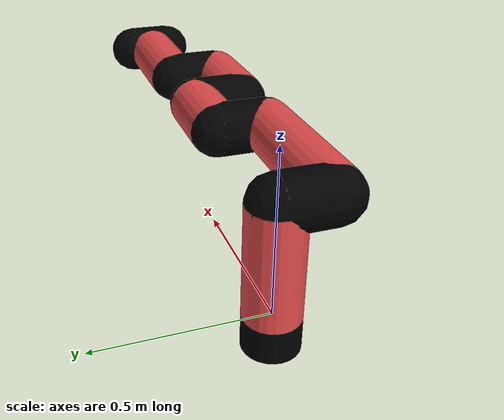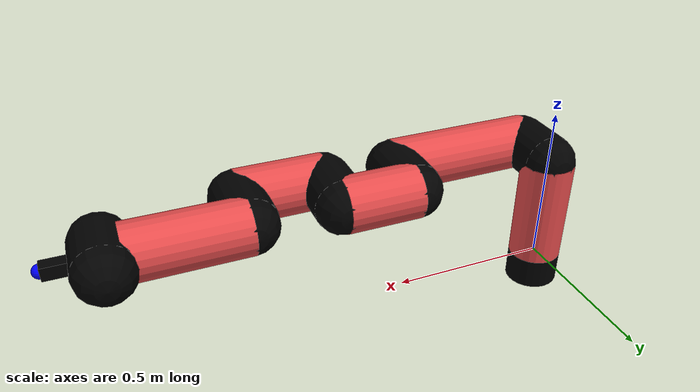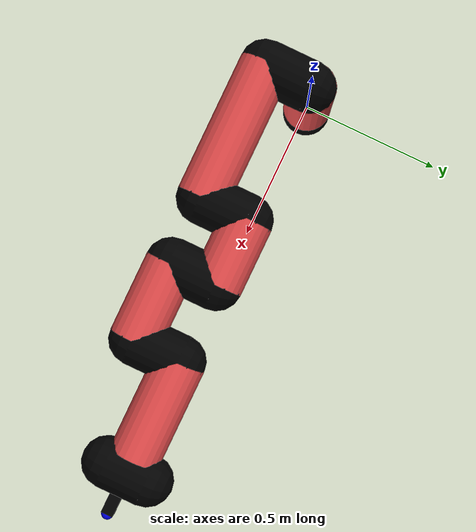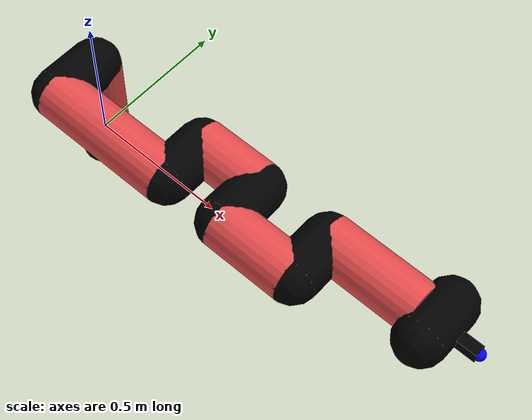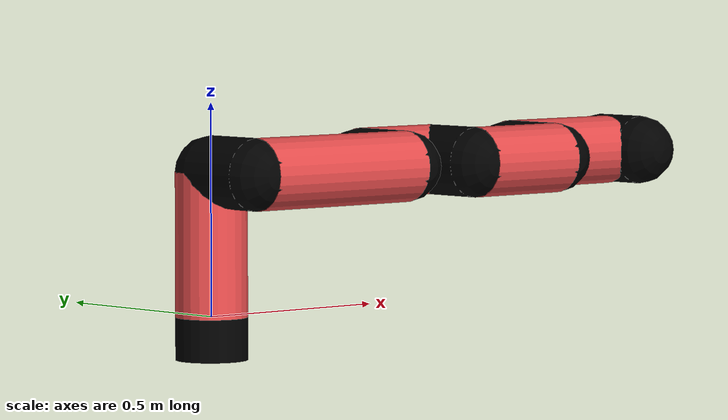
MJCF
<mujoco model="manipulator">
		<compiler angle="degree" coordinate="local" inertiafromgeom="auto" meshdir="meshes/"/>
		<option gravity="0 0 0" integrator="RK4" iterations="30" timestep="0.01"/>

		<default>
		<joint armature="1" limited="true" stiffness="10" damping="15" frictionloss="5.0"/>
		<geom conaffinity="1" condim="3" contype="1" friction=".5 .1 .1" margin="0.002"/>
		<motor ctrllimited="true"/>
		<position ctrllimited="true"/>
		</default>

		<asset>
		<texture builtin="gradient" height="100" rgb1="1.0 1.0 1.0" rgb2="1.0 1.0 1.0" type="skybox" width="100"/>
		<texture builtin="flat" height="32" name="arm_tex" rgb1="0.9 0.3 0.3" type="2d" width="32"/>
		<texture builtin="flat" height="32" name="gripper_tex" rgb1="0.0 0.0 0.0" type="cube" width="32"/>

		<material name="arm_mat" shininess="0.1" specular="0.1" texture="arm_tex"/>
		<material name="gripper_mat" shininess="1" specular="1" texture="gripper_tex"/>
		</asset>

		<worldbody>
		<light cutoff="45" diffuse=".8 .8 .8" dir="0 0.16 -1" directional="false" name="light" pos="0 -2.0 8.0" specular="0.3 0.3 0.3"/>

		<body name="base_link" pos="0 0 -0.1">
		<geom fromto="0 0 0 0 0 0.1" material="arm_mat" name="base_link" rgba="0.0 0.0 0.0 1" size="0.085" type="cylinder"/>
		</body>

		<body name="l1" pos="0 0 0">
<geom fromto="0 0 0 0 0 0.34" material="arm_mat" name="l1" rgba="0.9 0.3 0.3 1" size="0.085" type="cylinder"/>
<geom fromto="0 0 0.34 0 -0.16 0.34" material="arm_mat" name="l1_ex" rgba="0.0 0.0 0.0 1" size="0.085" type="capsule"/>
<joint axis="0 0 1" name="j1" pos="0 0 0" range="-90 90" damping="30.25" frictionloss="8.62"/>

<body name="l2" pos="0 -0.16 0.34">
<geom fromto="0 0 0 0.47 0 0" material="arm_mat" name="l2" rgba="0.9 0.3 0.3 1" size="0.085" type="cylinder"/>
<geom fromto="0.47 0 0 0.47 0.16 0" material="arm_mat" name="l2_ex" rgba="0.0 0.0 0.0 1" size="0.085" type="capsule"/>
<joint axis="-0.13 1.18 0.02" name="j2" pos="0 0 0" range="-90 60" damping="31.14" frictionloss="9.11"/>

<body name="l3" pos="0.47 0.16 0">
<geom fromto="0 0 0 0.23 0 0" material="arm_mat" name="l3" rgba="0.9 0.3 0.3 1" size="0.085" type="cylinder"/>
<geom fromto="0.23 0 0 0.23 -0.16 0" material="arm_mat" name="l3_ex" rgba="0.0 0.0 0.0 1" size="0.085" type="capsule"/>
<joint axis="0.03 1.17 -0.19" name="j3" pos="0 0 0" range="-30 60" damping="26.98" frictionloss="12.34"/>

<body name="l4" pos="0.23 -0.16 0">
<geom fromto="0 0 0 0.27 0 0" material="arm_mat" name="l4" rgba="0.9 0.3 0.3 1" size="0.085" type="cylinder"/>
<geom fromto="0.27 0 0 0.27 0.16 0" material="arm_mat" name="l4_ex" rgba="0.0 0.0 0.0 1" size="0.085" type="capsule"/>
<joint axis="-0.11 1.04 0.23" name="j4" pos="0 0 0" range="-30 60" damping="35.38" frictionloss="9.05"/>

<body name="l5" pos="0.27 0.16 0">
<geom fromto="0 0 0 0.34 0 0" material="arm_mat" name="l5" rgba="0.9 0.3 0.3 1" size="0.085" type="cylinder"/>
<joint axis="0.03 0.76 0.15" name="j5" pos="0 0 0" range="-30 60" damping="28.74" frictionloss="8.76"/>

<body name="gripper" pos="0.34 0 0">
<geom fromto="0.05 -0.07 0 0.05 0.07 0" material="gripper_mat" name="gripper" rgba="0.0 0.0 0.0 1" size="0.085" type="capsule"/><joint axis="1 0 0" name="j6" pos="0 0 0" range="-90 90" damping="15" frictionloss="5.0"/><body name="finger" pos="0.1 0 0">
<geom fromto="0 0.0 0 0.1 0.0 0" material="gripper_mat" name="finger" rgba="0.0 0.0 0.0 1" size="0.020 0.06 0.06" type="box"/>
</body>
<site name="current" pos="0.2 0. 0.0" rgba="0. 0. 1.0 1" size="0.02" type="sphere"/>
</body>
</body>
</body>
</body>
</body>
</body>
</worldbody>
<actuator>
<motor ctrllimited="true" ctrlrange="-1.0 1.0" joint="j1" gear="85.94"/>
<motor ctrllimited="true" ctrlrange="-1.0 1.0" joint="j2" gear="85.24"/>
<motor ctrllimited="true" ctrlrange="-1.0 1.0" joint="j3" gear="95.02"/>
<motor ctrllimited="true" ctrlrange="-1.0 1.0" joint="j4" gear="97.57"/>
<motor ctrllimited="true" ctrlrange="-1.0 1.0" joint="j5" gear="60.34"/>
<motor ctrllimited="true" ctrlrange="-1.0 1.0" joint="j6" gear="80"/>
</actuator>
</mujoco>
